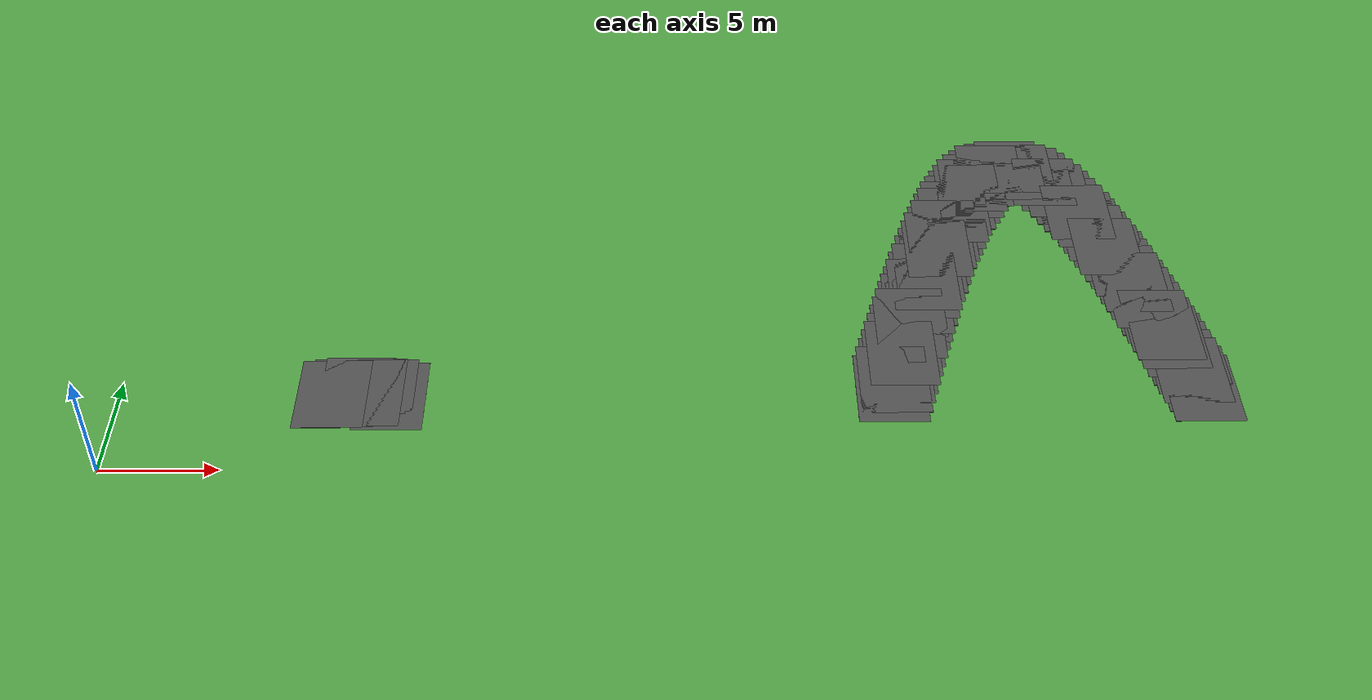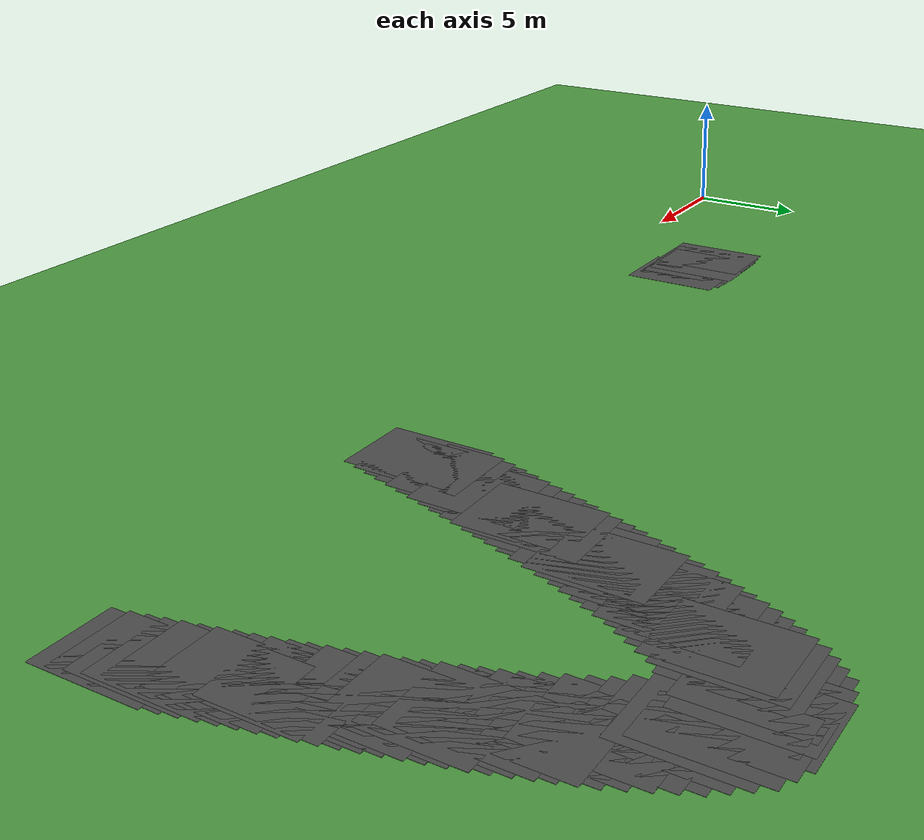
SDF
<sdf version="1.7">
 <world name="default">
  <model name="grass_floor">
   <static>1</static>
   <link name="link">
    <collision name="collision">
     <geometry><plane><normal>0 0 1</normal><size>500 700</size></plane></geometry>
     <surface><friction><ode><mu>100</mu><mu2>50</mu2></ode></friction></surface>
    </collision>
    <visual name="visual">
     <cast_shadows>0</cast_shadows>
     <geometry><plane><normal>0 0 1</normal><size>500 700</size></plane></geometry>
     <material>
      <script><uri>file://media/materials/scripts/gazebo.material</uri><name>Gazebo/Grass</name></script>
     </material>
    </visual>
   </link>
   <pose>200 250 0 0 -0 0</pose>
  </model>
  <model name="roadSegment_9_0">
   <static>1</static>
   <link name="link">
    <collision name="collision"><geometry><box><size>3 4 0.01</size></box></geometry></collision>
    <visual name="visual">
     <cast_shadows>0</cast_shadows>
     <geometry><box><size>3 4 0.01</size></box></geometry>
     <material>
      <script>
       <uri>model://asphalt_plane/materials/scripts</uri>
       <uri>model://asphalt_plane/materials/textures</uri>
       <name>vrc/asphalt</name>
      </script>
     </material>
    </visual>
   </link>
   <pose>9 4.38231 0 0 -0 0</pose>
  </model>
  <model name="roadSegment_9_1">
   <static>1</static>
   <link name="link">
    <collision name="collision"><geometry><box><size>3 4 0.01</size></box></geometry></collision>
    <visual name="visual">
     <cast_shadows>0</cast_shadows>
     <geometry><box><size>3 4 0.01</size></box></geometry>
     <material>
      <script>
       <uri>model://asphalt_plane/materials/scripts</uri>
       <uri>model://asphalt_plane/materials/textures</uri>
       <name>vrc/asphalt</name>
      </script>
     </material>
    </visual>
   </link>
   <pose>9.5 4.4644 0 0 -0 0</pose>
  </model>
  <model name="roadSegment_10_0">
   <static>1</static>
   <link name="link">
    <collision name="collision"><geometry><box><size>3 4 0.01</size></box></geometry></collision>
    <visual name="visual">
     <cast_shadows>0</cast_shadows>
     <geometry><box><size>3 4 0.01</size></box></geometry>
     <material>
      <script>
       <uri>model://asphalt_plane/materials/scripts</uri>
       <uri>model://asphalt_plane/materials/textures</uri>
       <name>vrc/asphalt</name>
      </script>
     </material>
    </visual>
   </link>
   <pose>10 4.54649 0 0 -0 0</pose>
  </model>
  <model name="roadSegment_10_1">
   <static>1</static>
   <link name="link">
    <collision name="collision"><geometry><box><size>3 4 0.01</size></box></geometry></collision>
    <visual name="visual">
     <cast_shadows>0</cast_shadows>
     <geometry><box><size>3 4 0.01</size></box></geometry>
     <material>
      <script>
       <uri>model://asphalt_plane/materials/scripts</uri>
       <uri>model://asphalt_plane/materials/textures</uri>
       <name>vrc/asphalt</name>
      </script>
     </material>
    </visual>
   </link>
   <pose>10.5 4.49661 0 0 -0 0</pose>
  </model>
  <model name="roadSegment_11_0">
   <static>1</static>
   <link name="link">
    <collision name="collision"><geometry><box><size>3 4 0.01</size></box></geometry></collision>
    <visual name="visual">
     <cast_shadows>0</cast_shadows>
     <geometry><box><size>3 4 0.01</size></box></geometry>
     <material>
      <script>
       <uri>model://asphalt_plane/materials/scripts</uri>
       <uri>model://asphalt_plane/materials/textures</uri>
       <name>vrc/asphalt</name>
      </script>
     </material>
    </visual>
   </link>
   <pose>11 4.44673 0 0 -0 0</pose>
  </model>
  <model name="roadSegment_11_1">
   <static>1</static>
   <link name="link">
    <collision name="collision"><geometry><box><size>3 4 0.01</size></box></geometry></collision>
    <visual name="visual">
     <cast_shadows>0</cast_shadows>
     <geometry><box><size>3 4 0.01</size></box></geometry>
     <material>
      <script>
       <uri>model://asphalt_plane/materials/scripts</uri>
       <uri>model://asphalt_plane/materials/textures</uri>
       <name>vrc/asphalt</name>
      </script>
     </material>
    </visual>
   </link>
   <pose>11.5 4.24975 0 0 -0 0</pose>
  </model>
  <model name="roadSegment_32_5">
   <static>1</static>
   <link name="link">
    <collision name="collision"><geometry><box><size>3 4 0.01</size></box></geometry></collision>
    <visual name="visual">
     <cast_shadows>0</cast_shadows>
     <geometry><box><size>3 4 0.01</size></box></geometry>
     <material>
      <script>
       <uri>model://asphalt_plane/materials/scripts</uri>
       <uri>model://asphalt_plane/materials/textures</uri>
       <name>vrc/asphalt</name>
      </script>
     </material>
    </visual>
   </link>
   <pose>32.8333 4.59449 0 0 -0 0</pose>
  </model>
  <model name="roadSegment_33_0">
   <static>1</static>
   <link name="link">
    <collision name="collision"><geometry><box><size>3 4 0.01</size></box></geometry></collision>
    <visual name="visual">
     <cast_shadows>0</cast_shadows>
     <geometry><box><size>3 4 0.01</size></box></geometry>
     <material>
      <script>
       <uri>model://asphalt_plane/materials/scripts</uri>
       <uri>model://asphalt_plane/materials/textures</uri>
       <name>vrc/asphalt</name>
      </script>
     </material>
    </visual>
   </link>
   <pose>33 5.14043 0 0 -0 0</pose>
  </model>
  <model name="roadSegment_33_1">
   <static>1</static>
   <link name="link">
    <collision name="collision"><geometry><box><size>3 4 0.01</size></box></geometry></collision>
    <visual name="visual">
     <cast_shadows>0</cast_shadows>
     <geometry><box><size>3 4 0.01</size></box></geometry>
     <material>
      <script>
       <uri>model://asphalt_plane/materials/scripts</uri>
       <uri>model://asphalt_plane/materials/textures</uri>
       <name>vrc/asphalt</name>
      </script>
     </material>
    </visual>
   </link>
   <pose>33.1667 5.68368 0 0 -0 0</pose>
  </model>
  <model name="roadSegment_33_2">
   <static>1</static>
   <link name="link">
    <collision name="collision"><geometry><box><size>3 4 0.01</size></box></geometry></collision>
    <visual name="visual">
     <cast_shadows>0</cast_shadows>
     <geometry><box><size>3 4 0.01</size></box></geometry>
     <material>
      <script>
       <uri>model://asphalt_plane/materials/scripts</uri>
       <uri>model://asphalt_plane/materials/textures</uri>
       <name>vrc/asphalt</name>
      </script>
     </material>
    </visual>
   </link>
   <pose>33.3333 6.22693 0 0 -0 0</pose>
  </model>
  <model name="roadSegment_33_3">
   <static>1</static>
   <link name="link">
    <collision name="collision"><geometry><box><size>3 4 0.01</size></box></geometry></collision>
    <visual name="visual">
     <cast_shadows>0</cast_shadows>
     <geometry><box><size>3 4 0.01</size></box></geometry>
     <material>
      <script>
       <uri>model://asphalt_plane/materials/scripts</uri>
       <uri>model://asphalt_plane/materials/textures</uri>
       <name>vrc/asphalt</name>
      </script>
     </material>
    </visual>
   </link>
   <pose>33.5 6.77018 0 0 -0 0</pose>
  </model>
  <model name="roadSegment_33_4">
   <static>1</static>
   <link name="link">
    <collision name="collision"><geometry><box><size>3 4 0.01</size></box></geometry></collision>
    <visual name="visual">
     <cast_shadows>0</cast_shadows>
     <geometry><box><size>3 4 0.01</size></box></geometry>
     <material>
      <script>
       <uri>model://asphalt_plane/materials/scripts</uri>
       <uri>model://asphalt_plane/materials/textures</uri>
       <name>vrc/asphalt</name>
      </script>
     </material>
    </visual>
   </link>
   <pose>33.6667 7.31343 0 0 -0 0</pose>
  </model>
  <model name="roadSegment_33_5">
   <static>1</static>
   <link name="link">
    <collision name="collision"><geometry><box><size>3 4 0.01</size></box></geometry></collision>
    <visual name="visual">
     <cast_shadows>0</cast_shadows>
     <geometry><box><size>3 4 0.01</size></box></geometry>
     <material>
      <script>
       <uri>model://asphalt_plane/materials/scripts</uri>
       <uri>model://asphalt_plane/materials/textures</uri>
       <name>vrc/asphalt</name>
      </script>
     </material>
    </visual>
   </link>
   <pose>33.8333 7.85668 0 0 -0 0</pose>
  </model>
  <model name="roadSegment_34_0">
   <static>1</static>
   <link name="link">
    <collision name="collision"><geometry><box><size>3 4 0.01</size></box></geometry></collision>
    <visual name="visual">
     <cast_shadows>0</cast_shadows>
     <geometry><box><size>3 4 0.01</size></box></geometry>
     <material>
      <script>
       <uri>model://asphalt_plane/materials/scripts</uri>
       <uri>model://asphalt_plane/materials/textures</uri>
       <name>vrc/asphalt</name>
      </script>
     </material>
    </visual>
   </link>
   <pose>34 8.39993 0 0 -0 0</pose>
  </model>
  <model name="roadSegment_34_1">
   <static>1</static>
   <link name="link">
    <collision name="collision"><geometry><box><size>3 4 0.01</size></box></geometry></collision>
    <visual name="visual">
     <cast_shadows>0</cast_shadows>
     <geometry><box><size>3 4 0.01</size></box></geometry>
     <material>
      <script>
       <uri>model://asphalt_plane/materials/scripts</uri>
       <uri>model://asphalt_plane/materials/textures</uri>
       <name>vrc/asphalt</name>
      </script>
     </material>
    </visual>
   </link>
   <pose>34.1667 8.91615 0 0 -0 0</pose>
  </model>
  <model name="roadSegment_34_2">
   <static>1</static>
   <link name="link">
    <collision name="collision"><geometry><box><size>3 4 0.01</size></box></geometry></collision>
    <visual name="visual">
     <cast_shadows>0</cast_shadows>
     <geometry><box><size>3 4 0.01</size></box></geometry>
     <material>
      <script>
       <uri>model://asphalt_plane/materials/scripts</uri>
       <uri>model://asphalt_plane/materials/textures</uri>
       <name>vrc/asphalt</name>
      </script>
     </material>
    </visual>
   </link>
   <pose>34.3333 9.43237 0 0 -0 0</pose>
  </model>
  <model name="roadSegment_34_3">
   <static>1</static>
   <link name="link">
    <collision name="collision"><geometry><box><size>3 4 0.01</size></box></geometry></collision>
    <visual name="visual">
     <cast_shadows>0</cast_shadows>
     <geometry><box><size>3 4 0.01</size></box></geometry>
     <material>
      <script>
       <uri>model://asphalt_plane/materials/scripts</uri>
       <uri>model://asphalt_plane/materials/textures</uri>
       <name>vrc/asphalt</name>
      </script>
     </material>
    </visual>
   </link>
   <pose>34.5 9.9486 0 0 -0 0</pose>
  </model>
  <model name="roadSegment_34_4">
   <static>1</static>
   <link name="link">
    <collision name="collision"><geometry><box><size>3 4 0.01</size></box></geometry></collision>
    <visual name="visual">
     <cast_shadows>0</cast_shadows>
     <geometry><box><size>3 4 0.01</size></box></geometry>
     <material>
      <script>
       <uri>model://asphalt_plane/materials/scripts</uri>
       <uri>model://asphalt_plane/materials/textures</uri>
       <name>vrc/asphalt</name>
      </script>
     </material>
    </visual>
   </link>
   <pose>34.6667 10.4648 0 0 -0 0</pose>
  </model>
  <model name="roadSegment_34_5">
   <static>1</static>
   <link name="link">
    <collision name="collision"><geometry><box><size>3 4 0.01</size></box></geometry></collision>
    <visual name="visual">
     <cast_shadows>0</cast_shadows>
     <geometry><box><size>3 4 0.01</size></box></geometry>
     <material>
      <script>
       <uri>model://asphalt_plane/materials/scripts</uri>
       <uri>model://asphalt_plane/materials/textures</uri>
       <name>vrc/asphalt</name>
      </script>
     </material>
    </visual>
   </link>
   <pose>34.8333 10.981 0 0 -0 0</pose>
  </model>
  <model name="roadSegment_35_0">
   <static>1</static>
   <link name="link">
    <collision name="collision"><geometry><box><size>3 4 0.01</size></box></geometry></collision>
    <visual name="visual">
     <cast_shadows>0</cast_shadows>
     <geometry><box><size>3 4 0.01</size></box></geometry>
     <material>
      <script>
       <uri>model://asphalt_plane/materials/scripts</uri>
       <uri>model://asphalt_plane/materials/textures</uri>
       <name>vrc/asphalt</name>
      </script>
     </material>
    </visual>
   </link>
   <pose>35 11.4973 0 0 -0 0</pose>
  </model>
  <model name="roadSegment_35_1">
   <static>1</static>
   <link name="link">
    <collision name="collision"><geometry><box><size>3 4 0.01</size></box></geometry></collision>
    <visual name="visual">
     <cast_shadows>0</cast_shadows>
     <geometry><box><size>3 4 0.01</size></box></geometry>
     <material>
      <script>
       <uri>model://asphalt_plane/materials/scripts</uri>
       <uri>model://asphalt_plane/materials/textures</uri>
       <name>vrc/asphalt</name>
      </script>
     </material>
    </visual>
   </link>
   <pose>35.2 12.055 0 0 -0 0</pose>
  </model>
  <model name="roadSegment_35_2">
   <static>1</static>
   <link name="link">
    <collision name="collision"><geometry><box><size>3 4 0.01</size></box></geometry></collision>
    <visual name="visual">
     <cast_shadows>0</cast_shadows>
     <geometry><box><size>3 4 0.01</size></box></geometry>
     <material>
      <script>
       <uri>model://asphalt_plane/materials/scripts</uri>
       <uri>model://asphalt_plane/materials/textures</uri>
       <name>vrc/asphalt</name>
      </script>
     </material>
    </visual>
   </link>
   <pose>35.4 12.6128 0 0 -0 0</pose>
  </model>
  <model name="roadSegment_35_3">
   <static>1</static>
   <link name="link">
    <collision name="collision"><geometry><box><size>3 4 0.01</size></box></geometry></collision>
    <visual name="visual">
     <cast_shadows>0</cast_shadows>
     <geometry><box><size>3 4 0.01</size></box></geometry>
     <material>
      <script>
       <uri>model://asphalt_plane/materials/scripts</uri>
       <uri>model://asphalt_plane/materials/textures</uri>
       <name>vrc/asphalt</name>
      </script>
     </material>
    </visual>
   </link>
   <pose>35.6 13.1705 0 0 -0 0</pose>
  </model>
  <model name="roadSegment_35_4">
   <static>1</static>
   <link name="link">
    <collision name="collision"><geometry><box><size>3 4 0.01</size></box></geometry></collision>
    <visual name="visual">
     <cast_shadows>0</cast_shadows>
     <geometry><box><size>3 4 0.01</size></box></geometry>
     <material>
      <script>
       <uri>model://asphalt_plane/materials/scripts</uri>
       <uri>model://asphalt_plane/materials/textures</uri>
       <name>vrc/asphalt</name>
      </script>
     </material>
    </visual>
   </link>
   <pose>35.8 13.7283 0 0 -0 0</pose>
  </model>
  <model name="roadSegment_36_0">
   <static>1</static>
   <link name="link">
    <collision name="collision"><geometry><box><size>3 4 0.01</size></box></geometry></collision>
    <visual name="visual">
     <cast_shadows>0</cast_shadows>
     <geometry><box><size>3 4 0.01</size></box></geometry>
     <material>
      <script>
       <uri>model://asphalt_plane/materials/scripts</uri>
       <uri>model://asphalt_plane/materials/textures</uri>
       <name>vrc/asphalt</name>
      </script>
     </material>
    </visual>
   </link>
   <pose>36 14.286 0 0 -0 0</pose>
  </model>
  <model name="roadSegment_36_1">
   <static>1</static>
   <link name="link">
    <collision name="collision"><geometry><box><size>3 4 0.01</size></box></geometry></collision>
    <visual name="visual">
     <cast_shadows>0</cast_shadows>
     <geometry><box><size>3 4 0.01</size></box></geometry>
     <material>
      <script>
       <uri>model://asphalt_plane/materials/scripts</uri>
       <uri>model://asphalt_plane/materials/textures</uri>
       <name>vrc/asphalt</name>
      </script>
     </material>
    </visual>
   </link>
   <pose>36.2 14.754 0 0 -0 0</pose>
  </model>
  <model name="roadSegment_36_2">
   <static>1</static>
   <link name="link">
    <collision name="collision"><geometry><box><size>3 4 0.01</size></box></geometry></collision>
    <visual name="visual">
     <cast_shadows>0</cast_shadows>
     <geometry><box><size>3 4 0.01</size></box></geometry>
     <material>
      <script>
       <uri>model://asphalt_plane/materials/scripts</uri>
       <uri>model://asphalt_plane/materials/textures</uri>
       <name>vrc/asphalt</name>
      </script>
     </material>
    </visual>
   </link>
   <pose>36.4 15.2221 0 0 -0 0</pose>
  </model>
  <model name="roadSegment_36_3">
   <static>1</static>
   <link name="link">
    <collision name="collision"><geometry><box><size>3 4 0.01</size></box></geometry></collision>
    <visual name="visual">
     <cast_shadows>0</cast_shadows>
     <geometry><box><size>3 4 0.01</size></box></geometry>
     <material>
      <script>
       <uri>model://asphalt_plane/materials/scripts</uri>
       <uri>model://asphalt_plane/materials/textures</uri>
       <name>vrc/asphalt</name>
      </script>
     </material>
    </visual>
   </link>
   <pose>36.6 15.6901 0 0 -0 0</pose>
  </model>
  <model name="roadSegment_36_4">
   <static>1</static>
   <link name="link">
    <collision name="collision"><geometry><box><size>3 4 0.01</size></box></geometry></collision>
    <visual name="visual">
     <cast_shadows>0</cast_shadows>
     <geometry><box><size>3 4 0.01</size></box></geometry>
     <material>
      <script>
       <uri>model://asphalt_plane/materials/scripts</uri>
       <uri>model://asphalt_plane/materials/textures</uri>
       <name>vrc/asphalt</name>
      </script>
     </material>
    </visual>
   </link>
   <pose>36.8 16.1581 0 0 -0 0</pose>
  </model>
  <model name="roadSegment_37_0">
   <static>1</static>
   <link name="link">
    <collision name="collision"><geometry><box><size>3 4 0.01</size></box></geometry></collision>
    <visual name="visual">
     <cast_shadows>0</cast_shadows>
     <geometry><box><size>3 4 0.01</size></box></geometry>
     <material>
      <script>
       <uri>model://asphalt_plane/materials/scripts</uri>
       <uri>model://asphalt_plane/materials/textures</uri>
       <name>vrc/asphalt</name>
      </script>
     </material>
    </visual>
   </link>
   <pose>37 16.6261 0 0 -0 0</pose>
  </model>
  <model name="roadSegment_37_1">
   <static>1</static>
   <link name="link">
    <collision name="collision"><geometry><box><size>3 4 0.01</size></box></geometry></collision>
    <visual name="visual">
     <cast_shadows>0</cast_shadows>
     <geometry><box><size>3 4 0.01</size></box></geometry>
     <material>
      <script>
       <uri>model://asphalt_plane/materials/scripts</uri>
       <uri>model://asphalt_plane/materials/textures</uri>
       <name>vrc/asphalt</name>
      </script>
     </material>
    </visual>
   </link>
   <pose>37.25 17.0672 0 0 -0 0</pose>
  </model>
  <model name="roadSegment_37_2">
   <static>1</static>
   <link name="link">
    <collision name="collision"><geometry><box><size>3 4 0.01</size></box></geometry></collision>
    <visual name="visual">
     <cast_shadows>0</cast_shadows>
     <geometry><box><size>3 4 0.01</size></box></geometry>
     <material>
      <script>
       <uri>model://asphalt_plane/materials/scripts</uri>
       <uri>model://asphalt_plane/materials/textures</uri>
       <name>vrc/asphalt</name>
      </script>
     </material>
    </visual>
   </link>
   <pose>37.5 17.5083 0 0 -0 0</pose>
  </model>
  <model name="roadSegment_37_3">
   <static>1</static>
   <link name="link">
    <collision name="collision"><geometry><box><size>3 4 0.01</size></box></geometry></collision>
    <visual name="visual">
     <cast_shadows>0</cast_shadows>
     <geometry><box><size>3 4 0.01</size></box></geometry>
     <material>
      <script>
       <uri>model://asphalt_plane/materials/scripts</uri>
       <uri>model://asphalt_plane/materials/textures</uri>
       <name>vrc/asphalt</name>
      </script>
     </material>
    </visual>
   </link>
   <pose>37.75 17.9494 0 0 -0 0</pose>
  </model>
  <model name="roadSegment_38_0">
   <static>1</static>
   <link name="link">
    <collision name="collision"><geometry><box><size>3 4 0.01</size></box></geometry></collision>
    <visual name="visual">
     <cast_shadows>0</cast_shadows>
     <geometry><box><size>3 4 0.01</size></box></geometry>
     <material>
      <script>
       <uri>model://asphalt_plane/materials/scripts</uri>
       <uri>model://asphalt_plane/materials/textures</uri>
       <name>vrc/asphalt</name>
      </script>
     </material>
    </visual>
   </link>
   <pose>38 18.3905 0 0 -0 0</pose>
  </model>
  <model name="roadSegment_38_1">
   <static>1</static>
   <link name="link">
    <collision name="collision"><geometry><box><size>3 4 0.01</size></box></geometry></collision>
    <visual name="visual">
     <cast_shadows>0</cast_shadows>
     <geometry><box><size>3 4 0.01</size></box></geometry>
     <material>
      <script>
       <uri>model://asphalt_plane/materials/scripts</uri>
       <uri>model://asphalt_plane/materials/textures</uri>
       <name>vrc/asphalt</name>
      </script>
     </material>
    </visual>
   </link>
   <pose>38.3333 18.7508 0 0 -0 0</pose>
  </model>
  <model name="roadSegment_38_2">
   <static>1</static>
   <link name="link">
    <collision name="collision"><geometry><box><size>3 4 0.01</size></box></geometry></collision>
    <visual name="visual">
     <cast_shadows>0</cast_shadows>
     <geometry><box><size>3 4 0.01</size></box></geometry>
     <material>
      <script>
       <uri>model://asphalt_plane/materials/scripts</uri>
       <uri>model://asphalt_plane/materials/textures</uri>
       <name>vrc/asphalt</name>
      </script>
     </material>
    </visual>
   </link>
   <pose>38.6667 19.1112 0 0 -0 0</pose>
  </model>
  <model name="roadSegment_39_0">
   <static>1</static>
   <link name="link">
    <collision name="collision"><geometry><box><size>3 4 0.01</size></box></geometry></collision>
    <visual name="visual">
     <cast_shadows>0</cast_shadows>
     <geometry><box><size>3 4 0.01</size></box></geometry>
     <material>
      <script>
       <uri>model://asphalt_plane/materials/scripts</uri>
       <uri>model://asphalt_plane/materials/textures</uri>
       <name>vrc/asphalt</name>
      </script>
     </material>
    </visual>
   </link>
   <pose>39 19.4716 0 0 -0 0</pose>
  </model>
  <model name="roadSegment_39_1">
   <static>1</static>
   <link name="link">
    <collision name="collision"><geometry><box><size>3 4 0.01</size></box></geometry></collision>
    <visual name="visual">
     <cast_shadows>0</cast_shadows>
     <geometry><box><size>3 4 0.01</size></box></geometry>
     <material>
      <script>
       <uri>model://asphalt_plane/materials/scripts</uri>
       <uri>model://asphalt_plane/materials/textures</uri>
       <name>vrc/asphalt</name>
      </script>
     </material>
    </visual>
   </link>
   <pose>39.5 19.6294 0 0 -0 0</pose>
  </model>
  <model name="roadSegment_40_0">
   <static>1</static>
   <link name="link">
    <collision name="collision"><geometry><box><size>3 4 0.01</size></box></geometry></collision>
    <visual name="visual">
     <cast_shadows>0</cast_shadows>
     <geometry><box><size>3 4 0.01</size></box></geometry>
     <material>
      <script>
       <uri>model://asphalt_plane/materials/scripts</uri>
       <uri>model://asphalt_plane/materials/textures</uri>
       <name>vrc/asphalt</name>
      </script>
     </material>
    </visual>
   </link>
   <pose>40 19.7872 0 0 -0 0</pose>
  </model>
  <model name="roadSegment_40_1">
   <static>1</static>
   <link name="link">
    <collision name="collision"><geometry><box><size>3 4 0.01</size></box></geometry></collision>
    <visual name="visual">
     <cast_shadows>0</cast_shadows>
     <geometry><box><size>3 4 0.01</size></box></geometry>
     <material>
      <script>
       <uri>model://asphalt_plane/materials/scripts</uri>
       <uri>model://asphalt_plane/materials/textures</uri>
       <name>vrc/asphalt</name>
      </script>
     </material>
    </visual>
   </link>
   <pose>40.5 19.5361 0 0 -0 0</pose>
  </model>
  <model name="roadSegment_41_0">
   <static>1</static>
   <link name="link">
    <collision name="collision"><geometry><box><size>3 4 0.01</size></box></geometry></collision>
    <visual name="visual">
     <cast_shadows>0</cast_shadows>
     <geometry><box><size>3 4 0.01</size></box></geometry>
     <material>
      <script>
       <uri>model://asphalt_plane/materials/scripts</uri>
       <uri>model://asphalt_plane/materials/textures</uri>
       <name>vrc/asphalt</name>
      </script>
     </material>
    </visual>
   </link>
   <pose>41 19.285 0 0 -0 0</pose>
  </model>
  <model name="roadSegment_41_1">
   <static>1</static>
   <link name="link">
    <collision name="collision"><geometry><box><size>3 4 0.01</size></box></geometry></collision>
    <visual name="visual">
     <cast_shadows>0</cast_shadows>
     <geometry><box><size>3 4 0.01</size></box></geometry>
     <material>
      <script>
       <uri>model://asphalt_plane/materials/scripts</uri>
       <uri>model://asphalt_plane/materials/textures</uri>
       <name>vrc/asphalt</name>
      </script>
     </material>
    </visual>
   </link>
   <pose>41.3333 18.8388 0 0 -0 0</pose>
  </model>
  <model name="roadSegment_41_2">
   <static>1</static>
   <link name="link">
    <collision name="collision"><geometry><box><size>3 4 0.01</size></box></geometry></collision>
    <visual name="visual">
     <cast_shadows>0</cast_shadows>
     <geometry><box><size>3 4 0.01</size></box></geometry>
     <material>
      <script>
       <uri>model://asphalt_plane/materials/scripts</uri>
       <uri>model://asphalt_plane/materials/textures</uri>
       <name>vrc/asphalt</name>
      </script>
     </material>
    </visual>
   </link>
   <pose>41.6667 18.3927 0 0 -0 0</pose>
  </model>
  <model name="roadSegment_42_0">
   <static>1</static>
   <link name="link">
    <collision name="collision"><geometry><box><size>3 4 0.01</size></box></geometry></collision>
    <visual name="visual">
     <cast_shadows>0</cast_shadows>
     <geometry><box><size>3 4 0.01</size></box></geometry>
     <material>
      <script>
       <uri>model://asphalt_plane/materials/scripts</uri>
       <uri>model://asphalt_plane/materials/textures</uri>
       <name>vrc/asphalt</name>
      </script>
     </material>
    </visual>
   </link>
   <pose>42 17.9466 0 0 -0 0</pose>
  </model>
  <model name="roadSegment_42_1">
   <static>1</static>
   <link name="link">
    <collision name="collision"><geometry><box><size>3 4 0.01</size></box></geometry></collision>
    <visual name="visual">
     <cast_shadows>0</cast_shadows>
     <geometry><box><size>3 4 0.01</size></box></geometry>
     <material>
      <script>
       <uri>model://asphalt_plane/materials/scripts</uri>
       <uri>model://asphalt_plane/materials/textures</uri>
       <name>vrc/asphalt</name>
      </script>
     </material>
    </visual>
   </link>
   <pose>42.25 17.4073 0 0 -0 0</pose>
  </model>
  <model name="roadSegment_42_2">
   <static>1</static>
   <link name="link">
    <collision name="collision"><geometry><box><size>3 4 0.01</size></box></geometry></collision>
    <visual name="visual">
     <cast_shadows>0</cast_shadows>
     <geometry><box><size>3 4 0.01</size></box></geometry>
     <material>
      <script>
       <uri>model://asphalt_plane/materials/scripts</uri>
       <uri>model://asphalt_plane/materials/textures</uri>
       <name>vrc/asphalt</name>
      </script>
     </material>
    </visual>
   </link>
   <pose>42.5 16.8681 0 0 -0 0</pose>
  </model>
  <model name="roadSegment_42_3">
   <static>1</static>
   <link name="link">
    <collision name="collision"><geometry><box><size>3 4 0.01</size></box></geometry></collision>
    <visual name="visual">
     <cast_shadows>0</cast_shadows>
     <geometry><box><size>3 4 0.01</size></box></geometry>
     <material>
      <script>
       <uri>model://asphalt_plane/materials/scripts</uri>
       <uri>model://asphalt_plane/materials/textures</uri>
       <name>vrc/asphalt</name>
      </script>
     </material>
    </visual>
   </link>
   <pose>42.75 16.3288 0 0 -0 0</pose>
  </model>
  <model name="roadSegment_43_0">
   <static>1</static>
   <link name="link">
    <collision name="collision"><geometry><box><size>3 4 0.01</size></box></geometry></collision>
    <visual name="visual">
     <cast_shadows>0</cast_shadows>
     <geometry><box><size>3 4 0.01</size></box></geometry>
     <material>
      <script>
       <uri>model://asphalt_plane/materials/scripts</uri>
       <uri>model://asphalt_plane/materials/textures</uri>
       <name>vrc/asphalt</name>
      </script>
     </material>
    </visual>
   </link>
   <pose>43 15.7895 0 0 -0 0</pose>
  </model>
  <model name="roadSegment_43_1">
   <static>1</static>
   <link name="link">
    <collision name="collision"><geometry><box><size>3 4 0.01</size></box></geometry></collision>
    <visual name="visual">
     <cast_shadows>0</cast_shadows>
     <geometry><box><size>3 4 0.01</size></box></geometry>
     <material>
      <script>
       <uri>model://asphalt_plane/materials/scripts</uri>
       <uri>model://asphalt_plane/materials/textures</uri>
       <name>vrc/asphalt</name>
      </script>
     </material>
    </visual>
   </link>
   <pose>43.1667 15.3026 0 0 -0 0</pose>
  </model>
  <model name="roadSegment_43_2">
   <static>1</static>
   <link name="link">
    <collision name="collision"><geometry><box><size>3 4 0.01</size></box></geometry></collision>
    <visual name="visual">
     <cast_shadows>0</cast_shadows>
     <geometry><box><size>3 4 0.01</size></box></geometry>
     <material>
      <script>
       <uri>model://asphalt_plane/materials/scripts</uri>
       <uri>model://asphalt_plane/materials/textures</uri>
       <name>vrc/asphalt</name>
      </script>
     </material>
    </visual>
   </link>
   <pose>43.3333 14.8158 0 0 -0 0</pose>
  </model>
  <model name="roadSegment_43_3">
   <static>1</static>
   <link name="link">
    <collision name="collision"><geometry><box><size>3 4 0.01</size></box></geometry></collision>
    <visual name="visual">
     <cast_shadows>0</cast_shadows>
     <geometry><box><size>3 4 0.01</size></box></geometry>
     <material>
      <script>
       <uri>model://asphalt_plane/materials/scripts</uri>
       <uri>model://asphalt_plane/materials/textures</uri>
       <name>vrc/asphalt</name>
      </script>
     </material>
    </visual>
   </link>
   <pose>43.5 14.3289 0 0 -0 0</pose>
  </model>
  <model name="roadSegment_43_4">
   <static>1</static>
   <link name="link">
    <collision name="collision"><geometry><box><size>3 4 0.01</size></box></geometry></collision>
    <visual name="visual">
     <cast_shadows>0</cast_shadows>
     <geometry><box><size>3 4 0.01</size></box></geometry>
     <material>
      <script>
       <uri>model://asphalt_plane/materials/scripts</uri>
       <uri>model://asphalt_plane/materials/textures</uri>
       <name>vrc/asphalt</name>
      </script>
     </material>
    </visual>
   </link>
   <pose>43.6667 13.842 0 0 -0 0</pose>
  </model>
  <model name="roadSegment_43_5">
   <static>1</static>
   <link name="link">
    <collision name="collision"><geometry><box><size>3 4 0.01</size></box></geometry></collision>
    <visual name="visual">
     <cast_shadows>0</cast_shadows>
     <geometry><box><size>3 4 0.01</size></box></geometry>
     <material>
      <script>
       <uri>model://asphalt_plane/materials/scripts</uri>
       <uri>model://asphalt_plane/materials/textures</uri>
       <name>vrc/asphalt</name>
      </script>
     </material>
    </visual>
   </link>
   <pose>43.8333 13.3551 0 0 -0 0</pose>
  </model>
  <model name="roadSegment_44_0">
   <static>1</static>
   <link name="link">
    <collision name="collision"><geometry><box><size>3 4 0.01</size></box></geometry></collision>
    <visual name="visual">
     <cast_shadows>0</cast_shadows>
     <geometry><box><size>3 4 0.01</size></box></geometry>
     <material>
      <script>
       <uri>model://asphalt_plane/materials/scripts</uri>
       <uri>model://asphalt_plane/materials/textures</uri>
       <name>vrc/asphalt</name>
      </script>
     </material>
    </visual>
   </link>
   <pose>44 12.8682 0 0 -0 0</pose>
  </model>
  <model name="roadSegment_44_1">
   <static>1</static>
   <link name="link">
    <collision name="collision"><geometry><box><size>3 4 0.01</size></box></geometry></collision>
    <visual name="visual">
     <cast_shadows>0</cast_shadows>
     <geometry><box><size>3 4 0.01</size></box></geometry>
     <material>
      <script>
       <uri>model://asphalt_plane/materials/scripts</uri>
       <uri>model://asphalt_plane/materials/textures</uri>
       <name>vrc/asphalt</name>
      </script>
     </material>
    </visual>
   </link>
   <pose>44.1429 12.3545 0 0 -0 0</pose>
  </model>
  <model name="roadSegment_44_2">
   <static>1</static>
   <link name="link">
    <collision name="collision"><geometry><box><size>3 4 0.01</size></box></geometry></collision>
    <visual name="visual">
     <cast_shadows>0</cast_shadows>
     <geometry><box><size>3 4 0.01</size></box></geometry>
     <material>
      <script>
       <uri>model://asphalt_plane/materials/scripts</uri>
       <uri>model://asphalt_plane/materials/textures</uri>
       <name>vrc/asphalt</name>
      </script>
     </material>
    </visual>
   </link>
   <pose>44.2857 11.8409 0 0 -0 0</pose>
  </model>
  <model name="roadSegment_44_3">
   <static>1</static>
   <link name="link">
    <collision name="collision"><geometry><box><size>3 4 0.01</size></box></geometry></collision>
    <visual name="visual">
     <cast_shadows>0</cast_shadows>
     <geometry><box><size>3 4 0.01</size></box></geometry>
     <material>
      <script>
       <uri>model://asphalt_plane/materials/scripts</uri>
       <uri>model://asphalt_plane/materials/textures</uri>
       <name>vrc/asphalt</name>
      </script>
     </material>
    </visual>
   </link>
   <pose>44.4286 11.3272 0 0 -0 0</pose>
  </model>
  <model name="roadSegment_44_4">
   <static>1</static>
   <link name="link">
    <collision name="collision"><geometry><box><size>3 4 0.01</size></box></geometry></collision>
    <visual name="visual">
     <cast_shadows>0</cast_shadows>
     <geometry><box><size>3 4 0.01</size></box></geometry>
     <material>
      <script>
       <uri>model://asphalt_plane/materials/scripts</uri>
       <uri>model://asphalt_plane/materials/textures</uri>
       <name>vrc/asphalt</name>
      </script>
     </material>
    </visual>
   </link>
   <pose>44.5714 10.8136 0 0 -0 0</pose>
  </model>
  <model name="roadSegment_44_5">
   <static>1</static>
   <link name="link">
    <collision name="collision"><geometry><box><size>3 4 0.01</size></box></geometry></collision>
    <visual name="visual">
     <cast_shadows>0</cast_shadows>
     <geometry><box><size>3 4 0.01</size></box></geometry>
     <material>
      <script>
       <uri>model://asphalt_plane/materials/scripts</uri>
       <uri>model://asphalt_plane/materials/textures</uri>
       <name>vrc/asphalt</name>
      </script>
     </material>
    </visual>
   </link>
   <pose>44.7143 10.3 0 0 -0 0</pose>
  </model>
  <model name="roadSegment_44_6">
   <static>1</static>
   <link name="link">
    <collision name="collision"><geometry><box><size>3 4 0.01</size></box></geometry></collision>
    <visual name="visual">
     <cast_shadows>0</cast_shadows>
     <geometry><box><size>3 4 0.01</size></box></geometry>
     <material>
      <script>
       <uri>model://asphalt_plane/materials/scripts</uri>
       <uri>model://asphalt_plane/materials/textures</uri>
       <name>vrc/asphalt</name>
      </script>
     </material>
    </visual>
   </link>
   <pose>44.8571 9.78631 0 0 -0 0</pose>
  </model>
  <model name="roadSegment_45_0">
   <static>1</static>
   <link name="link">
    <collision name="collision"><geometry><box><size>3 4 0.01</size></box></geometry></collision>
    <visual name="visual">
     <cast_shadows>0</cast_shadows>
     <geometry><box><size>3 4 0.01</size></box></geometry>
     <material>
      <script>
       <uri>model://asphalt_plane/materials/scripts</uri>
       <uri>model://asphalt_plane/materials/textures</uri>
       <name>vrc/asphalt</name>
      </script>
     </material>
    </visual>
   </link>
   <pose>45 9.27267 0 0 -0 0</pose>
  </model>
  <model name="roadSegment_45_1">
   <static>1</static>
   <link name="link">
    <collision name="collision"><geometry><box><size>3 4 0.01</size></box></geometry></collision>
    <visual name="visual">
     <cast_shadows>0</cast_shadows>
     <geometry><box><size>3 4 0.01</size></box></geometry>
     <material>
      <script>
       <uri>model://asphalt_plane/materials/scripts</uri>
       <uri>model://asphalt_plane/materials/textures</uri>
       <name>vrc/asphalt</name>
      </script>
     </material>
    </visual>
   </link>
   <pose>45.125 8.75439 0 0 -0 0</pose>
  </model>
  <model name="roadSegment_45_2">
   <static>1</static>
   <link name="link">
    <collision name="collision"><geometry><box><size>3 4 0.01</size></box></geometry></collision>
    <visual name="visual">
     <cast_shadows>0</cast_shadows>
     <geometry><box><size>3 4 0.01</size></box></geometry>
     <material>
      <script>
       <uri>model://asphalt_plane/materials/scripts</uri>
       <uri>model://asphalt_plane/materials/textures</uri>
       <name>vrc/asphalt</name>
      </script>
     </material>
    </visual>
   </link>
   <pose>45.25 8.23612 0 0 -0 0</pose>
  </model>
  <model name="roadSegment_45_3">
   <static>1</static>
   <link name="link">
    <collision name="collision"><geometry><box><size>3 4 0.01</size></box></geometry></collision>
    <visual name="visual">
     <cast_shadows>0</cast_shadows>
     <geometry><box><size>3 4 0.01</size></box></geometry>
     <material>
      <script>
       <uri>model://asphalt_plane/materials/scripts</uri>
       <uri>model://asphalt_plane/materials/textures</uri>
       <name>vrc/asphalt</name>
      </script>
     </material>
    </visual>
   </link>
   <pose>45.375 7.71784 0 0 -0 0</pose>
  </model>
  <model name="roadSegment_45_4">
   <static>1</static>
   <link name="link">
    <collision name="collision"><geometry><box><size>3 4 0.01</size></box></geometry></collision>
    <visual name="visual">
     <cast_shadows>0</cast_shadows>
     <geometry><box><size>3 4 0.01</size></box></geometry>
     <material>
      <script>
       <uri>model://asphalt_plane/materials/scripts</uri>
       <uri>model://asphalt_plane/materials/textures</uri>
       <name>vrc/asphalt</name>
      </script>
     </material>
    </visual>
   </link>
   <pose>45.5 7.19957 0 0 -0 0</pose>
  </model>
  <model name="roadSegment_45_5">
   <static>1</static>
   <link name="link">
    <collision name="collision"><geometry><box><size>3 4 0.01</size></box></geometry></collision>
    <visual name="visual">
     <cast_shadows>0</cast_shadows>
     <geometry><box><size>3 4 0.01</size></box></geometry>
     <material>
      <script>
       <uri>model://asphalt_plane/materials/scripts</uri>
       <uri>model://asphalt_plane/materials/textures</uri>
       <name>vrc/asphalt</name>
      </script>
     </material>
    </visual>
   </link>
   <pose>45.625 6.68129 0 0 -0 0</pose>
  </model>
  <model name="roadSegment_45_6">
   <static>1</static>
   <link name="link">
    <collision name="collision"><geometry><box><size>3 4 0.01</size></box></geometry></collision>
    <visual name="visual">
     <cast_shadows>0</cast_shadows>
     <geometry><box><size>3 4 0.01</size></box></geometry>
     <material>
      <script>
       <uri>model://asphalt_plane/materials/scripts</uri>
       <uri>model://asphalt_plane/materials/textures</uri>
       <name>vrc/asphalt</name>
      </script>
     </material>
    </visual>
   </link>
   <pose>45.75 6.16302 0 0 -0 0</pose>
  </model>
  <model name="roadSegment_45_7">
   <static>1</static>
   <link name="link">
    <collision name="collision"><geometry><box><size>3 4 0.01</size></box></geometry></collision>
    <visual name="visual">
     <cast_shadows>0</cast_shadows>
     <geometry><box><size>3 4 0.01</size></box></geometry>
     <material>
      <script>
       <uri>model://asphalt_plane/materials/scripts</uri>
       <uri>model://asphalt_plane/materials/textures</uri>
       <name>vrc/asphalt</name>
      </script>
     </material>
    </visual>
   </link>
   <pose>45.875 5.64474 0 0 -0 0</pose>
  </model>
  <model name="roadSegment_46_0">
   <static>1</static>
   <link name="link">
    <collision name="collision"><geometry><box><size>3 4 0.01</size></box></geometry></collision>
    <visual name="visual">
     <cast_shadows>0</cast_shadows>
     <geometry><box><size>3 4 0.01</size></box></geometry>
     <material>
      <script>
       <uri>model://asphalt_plane/materials/scripts</uri>
       <uri>model://asphalt_plane/materials/textures</uri>
       <name>vrc/asphalt</name>
      </script>
     </material>
    </visual>
   </link>
   <pose>46 5.12647 0 0 -0 0</pose>
  </model>
  <model name="roadSegment_46_1">
   <static>1</static>
   <link name="link">
    <collision name="collision"><geometry><box><size>3 4 0.01</size></box></geometry></collision>
    <visual name="visual">
     <cast_shadows>0</cast_shadows>
     <geometry><box><size>3 4 0.01</size></box></geometry>
     <material>
      <script>
       <uri>model://asphalt_plane/materials/scripts</uri>
       <uri>model://asphalt_plane/materials/textures</uri>
       <name>vrc/asphalt</name>
      </script>
     </material>
    </visual>
   </link>
   <pose>46.125 4.55844 0 0 -0 0</pose>
  </model>
 </world>
</sdf>
